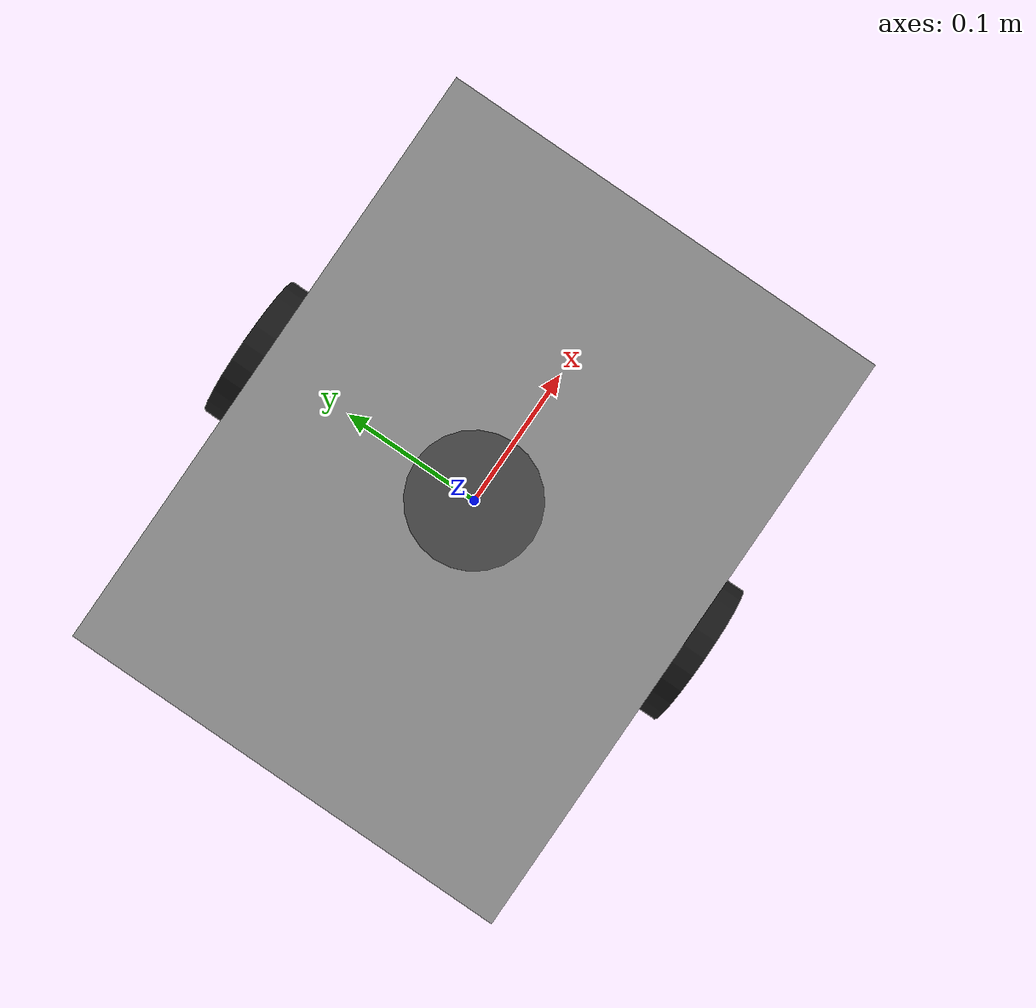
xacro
<?xml version="1.0"?>
<robot xmlns:xacro="http://www.ros.org/wiki/xacro" name="diff_drive_robot">

  <!--
    差速小车模型 — Phase 1 2D导航验证
    搭载 Livox Mid360 + IMU
  -->

  <xacro:include filename="$(find pnc_nav_simulation)/urdf/sensors/livox_mid360.urdf.xacro"/>
  <xacro:include filename="$(find pnc_nav_simulation)/urdf/sensors/imu.urdf.xacro"/>

  <!-- 参数 -->
  <xacro:property name="chassis_length" value="0.4"/>
  <xacro:property name="chassis_width" value="0.3"/>
  <xacro:property name="chassis_height" value="0.15"/>
  <xacro:property name="wheel_radius" value="0.05"/>
  <xacro:property name="wheel_width" value="0.03"/>
  <xacro:property name="wheel_separation" value="0.32"/>

  <!-- Base Footprint (地面投影) -->
  <link name="base_footprint"/>

  <!-- Base Link -->
  <link name="base_link">
    <visual>
      <geometry>
        <box size="${chassis_length} ${chassis_width} ${chassis_height}"/>
      </geometry>
      <material name="grey">
        <color rgba="0.6 0.6 0.6 1.0"/>
      </material>
    </visual>
    <collision>
      <geometry>
        <box size="${chassis_length} ${chassis_width} ${chassis_height}"/>
      </geometry>
    </collision>
    <inertial>
      <mass value="5.0"/>
      <inertia ixx="0.05" ixy="0" ixz="0" iyy="0.08" iyz="0" izz="0.1"/>
    </inertial>
  </link>

  <joint name="base_footprint_joint" type="fixed">
    <parent link="base_footprint"/>
    <child link="base_link"/>
    <origin xyz="0 0 ${wheel_radius + chassis_height/2}" rpy="0 0 0"/>
  </joint>

  <!-- 左轮 -->
  <link name="left_wheel">
    <visual>
      <geometry>
        <cylinder radius="${wheel_radius}" length="${wheel_width}"/>
      </geometry>
      <material name="black">
        <color rgba="0.1 0.1 0.1 1.0"/>
      </material>
    </visual>
    <collision>
      <geometry>
        <cylinder radius="${wheel_radius}" length="${wheel_width}"/>
      </geometry>
    </collision>
    <inertial>
      <mass value="0.5"/>
      <inertia ixx="0.0005" ixy="0" ixz="0" iyy="0.0005" iyz="0" izz="0.001"/>
    </inertial>
  </link>

  <joint name="left_wheel_joint" type="continuous">
    <parent link="base_link"/>
    <child link="left_wheel"/>
    <origin xyz="0 ${wheel_separation/2} ${-chassis_height/2}" rpy="${-pi/2} 0 0"/>
    <axis xyz="0 0 1"/>
  </joint>

  <!-- 右轮 -->
  <link name="right_wheel">
    <visual>
      <geometry>
        <cylinder radius="${wheel_radius}" length="${wheel_width}"/>
      </geometry>
      <material name="black">
        <color rgba="0.1 0.1 0.1 1.0"/>
      </material>
    </visual>
    <collision>
      <geometry>
        <cylinder radius="${wheel_radius}" length="${wheel_width}"/>
      </geometry>
    </collision>
    <inertial>
      <mass value="0.5"/>
      <inertia ixx="0.0005" ixy="0" ixz="0" iyy="0.0005" iyz="0" izz="0.001"/>
    </inertial>
  </link>

  <joint name="right_wheel_joint" type="continuous">
    <parent link="base_link"/>
    <child link="right_wheel"/>
    <origin xyz="0 ${-wheel_separation/2} ${-chassis_height/2}" rpy="${-pi/2} 0 0"/>
    <axis xyz="0 0 1"/>
  </joint>

  <!-- 万向轮 (前) -->
  <link name="caster_wheel">
    <visual>
      <geometry>
        <sphere radius="${wheel_radius * 0.5}"/>
      </geometry>
      <material name="black"/>
    </visual>
    <collision>
      <geometry>
        <sphere radius="${wheel_radius * 0.5}"/>
      </geometry>
    </collision>
    <inertial>
      <mass value="0.1"/>
      <inertia ixx="0.00001" ixy="0" ixz="0" iyy="0.00001" iyz="0" izz="0.00001"/>
    </inertial>
  </link>

  <joint name="caster_joint" type="fixed">
    <parent link="base_link"/>
    <child link="caster_wheel"/>
    <origin xyz="${chassis_length/2 - 0.05} 0 ${-chassis_height/2 - wheel_radius*0.5}" rpy="0 0 0"/>
  </joint>

  <!-- 差速驱动插件 -->
  <gazebo>
    <plugin name="diff_drive_controller" filename="libgazebo_ros_diff_drive.so">
      <ros>
        <remapping>cmd_vel:=cmd_vel</remapping>
        <remapping>odom:=odom</remapping>
      </ros>
      <left_joint>left_wheel_joint</left_joint>
      <right_joint>right_wheel_joint</right_joint>
      <wheel_separation>${wheel_separation}</wheel_separation>
      <wheel_diameter>${wheel_radius * 2}</wheel_diameter>
      <max_wheel_torque>10.0</max_wheel_torque>
      <max_wheel_acceleration>2.0</max_wheel_acceleration>
      <publish_odom>true</publish_odom>
      <publish_odom_tf>true</publish_odom_tf>
      <publish_wheel_tf>true</publish_wheel_tf>
      <odometry_frame>odom</odometry_frame>
      <robot_base_frame>base_footprint</robot_base_frame>
      <update_rate>50.0</update_rate>
    </plugin>
  </gazebo>

  <!-- 传感器：Livox Mid360 -->
  <xacro:livox_mid360
    parent_link="base_link"
    xyz="0 0 ${chassis_height/2 + 0.05}"
    rpy="0 0 0"
    topic="/livox/pointcloud"
    frame="livox_frame"/>

  <!-- 传感器：IMU -->
  <xacro:imu_sensor
    parent_link="base_link"
    xyz="0 0 0"
    rpy="0 0 0"
    topic="/imu"
    frame="imu_link"
    update_rate="200"/>

</robot>

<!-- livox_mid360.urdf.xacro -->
<robot xmlns:xacro="http://www.ros.org/wiki/xacro" name="livox_mid360">

  <!--
    Livox Mid360 LiDAR 传感器 Xacro 宏
    非重复扫描模式，360° FOV，40m量程
    使用 livox_laser_simulation_ros2 插件仿真
  -->

  <xacro:macro name="livox_mid360" params="parent_link:=base_link xyz:='0 0 0.2' rpy:='0 0 0' topic:=/livox/pointcloud frame:=livox_frame">

    <!-- Mid360 Link -->
    <link name="${frame}">
      <visual>
        <geometry>
          <cylinder radius="0.04" length="0.05"/>
        </geometry>
        <material name="dark_grey">
          <color rgba="0.3 0.3 0.3 1.0"/>
        </material>
      </visual>
      <collision>
        <geometry>
          <cylinder radius="0.04" length="0.05"/>
        </geometry>
      </collision>
      <inertial>
        <mass value="0.265"/>
        <inertia ixx="0.0001" ixy="0" ixz="0" iyy="0.0001" iyz="0" izz="0.0001"/>
      </inertial>
    </link>

    <!-- Joint to parent -->
    <joint name="${frame}_joint" type="fixed">
      <parent link="${parent_link}"/>
      <child link="${frame}"/>
      <origin xyz="${xyz}" rpy="${rpy}"/>
    </joint>

    <!-- Gazebo Livox Plugin -->
    <!--
      使用 livox_laser_simulation_ros2 插件
      如果该插件不可用，回退到标准 ray sensor
    -->
    <gazebo reference="${frame}">
      <sensor type="ray" name="livox_mid360">
        <pose>0 0 0 0 0 0</pose>
        <visualize>false</visualize>
        <update_rate>10</update_rate>
        <ray>
          <scan>
            <horizontal>
              <samples>360</samples>
              <resolution>1</resolution>
              <min_angle>-3.14159</min_angle>
              <max_angle>3.14159</max_angle>
            </horizontal>
            <vertical>
              <samples>32</samples>
              <resolution>1</resolution>
              <min_angle>-0.1222</min_angle>
              <max_angle>0.9076</max_angle>
            </vertical>
          </scan>
          <range>
            <min>0.1</min>
            <max>40.0</max>
            <resolution>0.01</resolution>
          </range>
          <noise>
            <type>gaussian</type>
            <mean>0.0</mean>
            <stddev>0.01</stddev>
          </noise>
        </ray>
        <plugin name="gazebo_ros_livox" filename="libgazebo_ros_ray_sensor.so">
          <ros>
            <remapping>~/out:=${topic}</remapping>
          </ros>
          <output_type>sensor_msgs/PointCloud2</output_type>
          <frame_name>${frame}</frame_name>
          <min_intensity>0</min_intensity>
        </plugin>
      </sensor>
    </gazebo>

  </xacro:macro>

</robot>

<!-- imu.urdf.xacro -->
<robot xmlns:xacro="http://www.ros.org/wiki/xacro" name="imu_sensor">

  <!--
    IMU 传感器 Xacro 宏
    6轴 IMU (加速度计 + 陀螺仪)
  -->

  <xacro:macro name="imu_sensor" params="parent_link:=base_link xyz:='0 0 0.1' rpy:='0 0 0' topic:=/imu frame:=imu_link update_rate:=200">

    <!-- IMU Link -->
    <link name="${frame}">
      <visual>
        <geometry>
          <box size="0.02 0.02 0.01"/>
        </geometry>
        <material name="blue">
          <color rgba="0.0 0.0 0.8 1.0"/>
        </material>
      </visual>
      <inertial>
        <mass value="0.01"/>
        <inertia ixx="0.00001" ixy="0" ixz="0" iyy="0.00001" iyz="0" izz="0.00001"/>
      </inertial>
    </link>

    <!-- Joint to parent -->
    <joint name="${frame}_joint" type="fixed">
      <parent link="${parent_link}"/>
      <child link="${frame}"/>
      <origin xyz="${xyz}" rpy="${rpy}"/>
    </joint>

    <!-- Gazebo IMU Plugin -->
    <gazebo reference="${frame}">
      <sensor type="imu" name="imu_sensor">
        <always_on>true</always_on>
        <update_rate>${update_rate}</update_rate>
        <imu>
          <angular_velocity>
            <x><noise type="gaussian"><mean>0.0</mean><stddev>0.0002</stddev></noise></x>
            <y><noise type="gaussian"><mean>0.0</mean><stddev>0.0002</stddev></noise></y>
            <z><noise type="gaussian"><mean>0.0</mean><stddev>0.0002</stddev></noise></z>
          </angular_velocity>
          <linear_acceleration>
            <x><noise type="gaussian"><mean>0.0</mean><stddev>0.017</stddev></noise></x>
            <y><noise type="gaussian"><mean>0.0</mean><stddev>0.017</stddev></noise></y>
            <z><noise type="gaussian"><mean>0.0</mean><stddev>0.017</stddev></noise></z>
          </linear_acceleration>
        </imu>
        <plugin name="gazebo_ros_imu" filename="libgazebo_ros_imu_sensor.so">
          <ros>
            <remapping>~/out:=${topic}</remapping>
          </ros>
          <frame_name>${frame}</frame_name>
          <initial_orientation_as_reference>false</initial_orientation_as_reference>
        </plugin>
      </sensor>
    </gazebo>

  </xacro:macro>

</robot>
